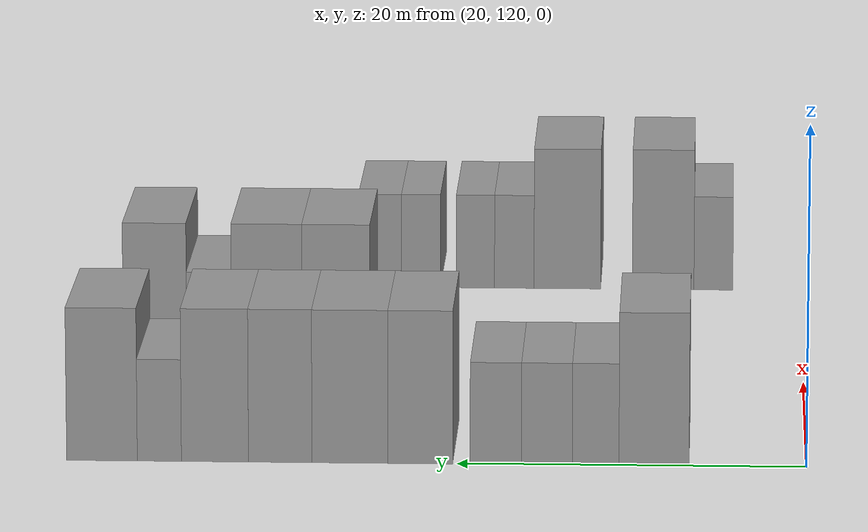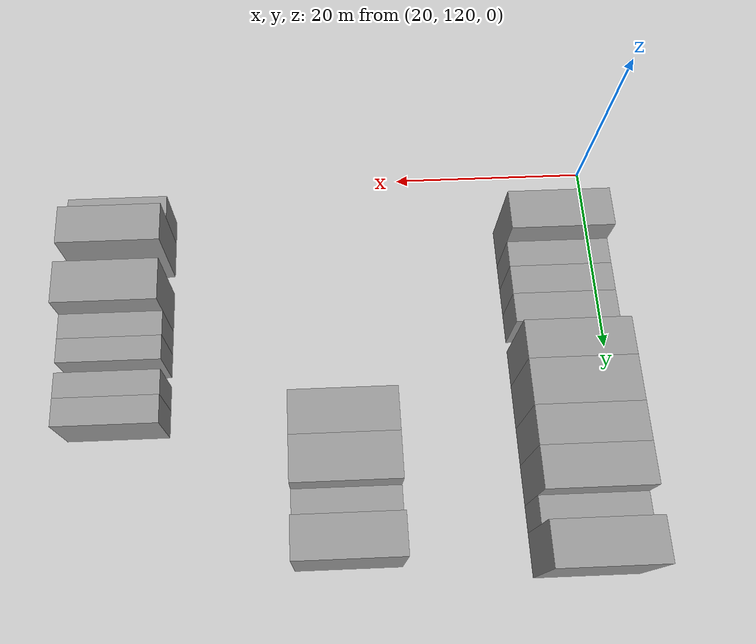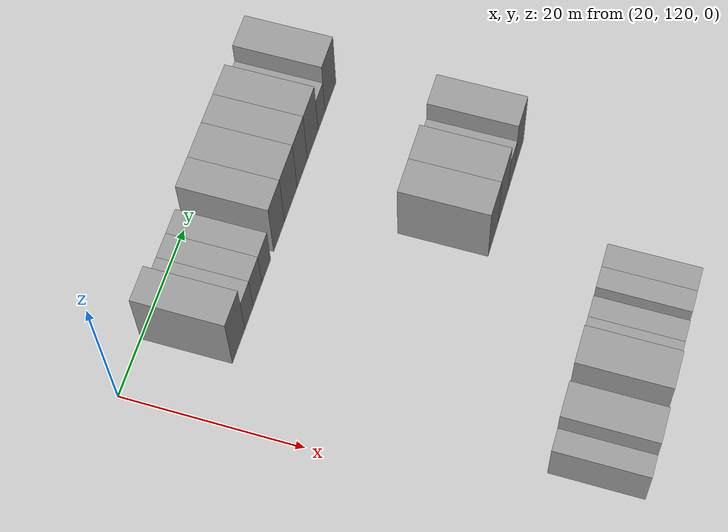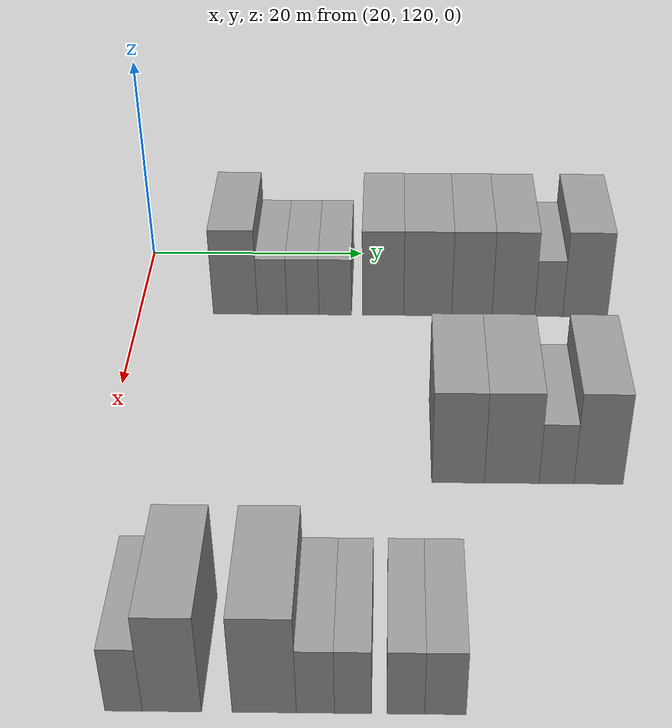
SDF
<sdf version="1.6">
 <world name="default">
  <model name="building_89">
   <static>1</static>
   <pose>25.0000 128.7384 0 0.000000 0.000000 0.000000</pose>
   <link name="link">
    <pose>0 0 4.50 0 0 0</pose>
    <collision name="collision"><geometry><box><size>10.0000 4.0123 9.0000</size></box></geometry></collision>
    <visual name="visual">
     <cast_shadows>0</cast_shadows>
     <geometry><box><size>10.0000 4.0123 9.0000</size></box></geometry>
     <material>
      <script>
       <uri>model://grey_wall/materials/scripts</uri>
       <uri>model://grey_wall/materials/textures</uri>
       <name>vrc/grey_wall</name>
      </script>
     </material>
    </visual>
   </link>
  </model>
  <model name="building_90">
   <static>1</static>
   <pose>25.0000 132.0802 0 0.000000 0.000000 0.000000</pose>
   <link name="link">
    <pose>0 0 3.00 0 0 0</pose>
    <collision name="collision"><geometry><box><size>10.0000 2.6713 6.0000</size></box></geometry></collision>
    <visual name="visual">
     <cast_shadows>0</cast_shadows>
     <geometry><box><size>10.0000 2.6713 6.0000</size></box></geometry>
     <material>
      <script>
       <uri>model://grey_wall/materials/scripts</uri>
       <uri>model://grey_wall/materials/textures</uri>
       <name>vrc/grey_wall</name>
      </script>
     </material>
    </visual>
   </link>
  </model>
  <model name="building_91">
   <static>1</static>
   <pose>25.0000 134.8691 0 0.000000 0.000000 0.000000</pose>
   <link name="link">
    <pose>0 0 3.00 0 0 0</pose>
    <collision name="collision"><geometry><box><size>10.0000 2.9065 6.0000</size></box></geometry></collision>
    <visual name="visual">
     <cast_shadows>0</cast_shadows>
     <geometry><box><size>10.0000 2.9065 6.0000</size></box></geometry>
     <material>
      <script>
       <uri>model://grey_wall/materials/scripts</uri>
       <uri>model://grey_wall/materials/textures</uri>
       <name>vrc/grey_wall</name>
      </script>
     </material>
    </visual>
   </link>
  </model>
  <model name="building_92">
   <static>1</static>
   <pose>25.0000 137.7899 0 0.000000 0.000000 0.000000</pose>
   <link name="link">
    <pose>0 0 3.00 0 0 0</pose>
    <collision name="collision"><geometry><box><size>10.0000 2.9352 6.0000</size></box></geometry></collision>
    <visual name="visual">
     <cast_shadows>0</cast_shadows>
     <geometry><box><size>10.0000 2.9352 6.0000</size></box></geometry>
     <material>
      <script>
       <uri>model://grey_wall/materials/scripts</uri>
       <uri>model://grey_wall/materials/textures</uri>
       <name>vrc/grey_wall</name>
      </script>
     </material>
    </visual>
   </link>
  </model>
  <model name="building_93">
   <static>1</static>
   <pose>25.0000 142.1137 0 0.000000 0.000000 0.000000</pose>
   <link name="link">
    <pose>0 0 4.50 0 0 0</pose>
    <collision name="collision"><geometry><box><size>10.0000 3.7125 9.0000</size></box></geometry></collision>
    <visual name="visual">
     <cast_shadows>0</cast_shadows>
     <geometry><box><size>10.0000 3.7125 9.0000</size></box></geometry>
     <material>
      <script>
       <uri>model://grey_wall/materials/scripts</uri>
       <uri>model://grey_wall/materials/textures</uri>
       <name>vrc/grey_wall</name>
      </script>
     </material>
    </visual>
   </link>
  </model>
  <model name="building_94">
   <static>1</static>
   <pose>25.0000 146.1461 0 0.000000 0.000000 0.000000</pose>
   <link name="link">
    <pose>0 0 4.50 0 0 0</pose>
    <collision name="collision"><geometry><box><size>10.0000 4.3523 9.0000</size></box></geometry></collision>
    <visual name="visual">
     <cast_shadows>0</cast_shadows>
     <geometry><box><size>10.0000 4.3523 9.0000</size></box></geometry>
     <material>
      <script>
       <uri>model://grey_wall/materials/scripts</uri>
       <uri>model://grey_wall/materials/textures</uri>
       <name>vrc/grey_wall</name>
      </script>
     </material>
    </visual>
   </link>
  </model>
  <model name="building_95">
   <static>1</static>
   <pose>25.0000 150.1456 0 0.000000 0.000000 0.000000</pose>
   <link name="link">
    <pose>0 0 4.50 0 0 0</pose>
    <collision name="collision"><geometry><box><size>10.0000 3.6467 9.0000</size></box></geometry></collision>
    <visual name="visual">
     <cast_shadows>0</cast_shadows>
     <geometry><box><size>10.0000 3.6467 9.0000</size></box></geometry>
     <material>
      <script>
       <uri>model://grey_wall/materials/scripts</uri>
       <uri>model://grey_wall/materials/textures</uri>
       <name>vrc/grey_wall</name>
      </script>
     </material>
    </visual>
   </link>
  </model>
  <model name="building_96">
   <static>1</static>
   <pose>25.0000 153.8942 0 0.000000 0.000000 0.000000</pose>
   <link name="link">
    <pose>0 0 4.50 0 0 0</pose>
    <collision name="collision"><geometry><box><size>10.0000 3.8504 9.0000</size></box></geometry></collision>
    <visual name="visual">
     <cast_shadows>0</cast_shadows>
     <geometry><box><size>10.0000 3.8504 9.0000</size></box></geometry>
     <material>
      <script>
       <uri>model://grey_wall/materials/scripts</uri>
       <uri>model://grey_wall/materials/textures</uri>
       <name>vrc/grey_wall</name>
      </script>
     </material>
    </visual>
   </link>
  </model>
  <model name="building_97">
   <static>1</static>
   <pose>25.0000 157.0864 0 0.000000 0.000000 0.000000</pose>
   <link name="link">
    <pose>0 0 3.00 0 0 0</pose>
    <collision name="collision"><geometry><box><size>10.0000 2.5340 6.0000</size></box></geometry></collision>
    <visual name="visual">
     <cast_shadows>0</cast_shadows>
     <geometry><box><size>10.0000 2.5340 6.0000</size></box></geometry>
     <material>
      <script>
       <uri>model://grey_wall/materials/scripts</uri>
       <uri>model://grey_wall/materials/textures</uri>
       <name>vrc/grey_wall</name>
      </script>
     </material>
    </visual>
   </link>
  </model>
  <model name="building_98">
   <static>1</static>
   <pose>25.0000 160.3821 0 0.000000 0.000000 0.000000</pose>
   <link name="link">
    <pose>0 0 4.50 0 0 0</pose>
    <collision name="collision"><geometry><box><size>10.0000 4.0575 9.0000</size></box></geometry></collision>
    <visual name="visual">
     <cast_shadows>0</cast_shadows>
     <geometry><box><size>10.0000 4.0575 9.0000</size></box></geometry>
     <material>
      <script>
       <uri>model://grey_wall/materials/scripts</uri>
       <uri>model://grey_wall/materials/textures</uri>
       <name>vrc/grey_wall</name>
      </script>
     </material>
    </visual>
   </link>
  </model>
  <model name="building_206">
   <static>1</static>
   <pose>47.0000 148.1056 0 0.000000 0.000000 0.000000</pose>
   <link name="link">
    <pose>0 0 4.50 0 0 0</pose>
    <collision name="collision"><geometry><box><size>10.0000 4.0907 9.0000</size></box></geometry></collision>
    <visual name="visual">
     <cast_shadows>0</cast_shadows>
     <geometry><box><size>10.0000 4.0907 9.0000</size></box></geometry>
     <material>
      <script>
       <uri>model://grey_wall/materials/scripts</uri>
       <uri>model://grey_wall/materials/textures</uri>
       <name>vrc/grey_wall</name>
      </script>
     </material>
    </visual>
   </link>
  </model>
  <model name="building_207">
   <static>1</static>
   <pose>47.0000 152.2756 0 0.000000 0.000000 0.000000</pose>
   <link name="link">
    <pose>0 0 4.50 0 0 0</pose>
    <collision name="collision"><geometry><box><size>10.0000 4.2493 9.0000</size></box></geometry></collision>
    <visual name="visual">
     <cast_shadows>0</cast_shadows>
     <geometry><box><size>10.0000 4.2493 9.0000</size></box></geometry>
     <material>
      <script>
       <uri>model://grey_wall/materials/scripts</uri>
       <uri>model://grey_wall/materials/textures</uri>
       <name>vrc/grey_wall</name>
      </script>
     </material>
    </visual>
   </link>
  </model>
  <model name="building_208">
   <static>1</static>
   <pose>47.0000 155.7540 0 0.000000 0.000000 0.000000</pose>
   <link name="link">
    <pose>0 0 3.00 0 0 0</pose>
    <collision name="collision"><geometry><box><size>10.0000 2.7075 6.0000</size></box></geometry></collision>
    <visual name="visual">
     <cast_shadows>0</cast_shadows>
     <geometry><box><size>10.0000 2.7075 6.0000</size></box></geometry>
     <material>
      <script>
       <uri>model://grey_wall/materials/scripts</uri>
       <uri>model://grey_wall/materials/textures</uri>
       <name>vrc/grey_wall</name>
      </script>
     </material>
    </visual>
   </link>
  </model>
  <model name="building_209">
   <static>1</static>
   <pose>47.0000 159.0225 0 0.000000 0.000000 0.000000</pose>
   <link name="link">
    <pose>0 0 4.50 0 0 0</pose>
    <collision name="collision"><geometry><box><size>10.0000 3.8296 9.0000</size></box></geometry></collision>
    <visual name="visual">
     <cast_shadows>0</cast_shadows>
     <geometry><box><size>10.0000 3.8296 9.0000</size></box></geometry>
     <material>
      <script>
       <uri>model://grey_wall/materials/scripts</uri>
       <uri>model://grey_wall/materials/textures</uri>
       <name>vrc/grey_wall</name>
      </script>
     </material>
    </visual>
   </link>
  </model>
  <model name="building_312">
   <static>1</static>
   <pose>69.0000 125.4518 0 0.000000 0.000000 0.000000</pose>
   <link name="link">
    <pose>0 0 3.00 0 0 0</pose>
    <collision name="collision"><geometry><box><size>10.0000 2.4531 6.0000</size></box></geometry></collision>
    <visual name="visual">
     <cast_shadows>0</cast_shadows>
     <geometry><box><size>10.0000 2.4531 6.0000</size></box></geometry>
     <material>
      <script>
       <uri>model://grey_wall/materials/scripts</uri>
       <uri>model://grey_wall/materials/textures</uri>
       <name>vrc/grey_wall</name>
      </script>
     </material>
    </visual>
   </link>
  </model>
  <model name="building_313">
   <static>1</static>
   <pose>69.0000 128.6182 0 0.000000 0.000000 0.000000</pose>
   <link name="link">
    <pose>0 0 4.50 0 0 0</pose>
    <collision name="collision"><geometry><box><size>10.0000 3.8796 9.0000</size></box></geometry></collision>
    <visual name="visual">
     <cast_shadows>0</cast_shadows>
     <geometry><box><size>10.0000 3.8796 9.0000</size></box></geometry>
     <material>
      <script>
       <uri>model://grey_wall/materials/scripts</uri>
       <uri>model://grey_wall/materials/textures</uri>
       <name>vrc/grey_wall</name>
      </script>
     </material>
    </visual>
   </link>
  </model>
  <model name="building_314">
   <static>1</static>
   <pose>69.0000 134.6590 0 0.000000 0.000000 0.000000</pose>
   <link name="link">
    <pose>0 0 4.50 0 0 0</pose>
    <collision name="collision"><geometry><box><size>10.0000 4.2021 9.0000</size></box></geometry></collision>
    <visual name="visual">
     <cast_shadows>0</cast_shadows>
     <geometry><box><size>10.0000 4.2021 9.0000</size></box></geometry>
     <material>
      <script>
       <uri>model://grey_wall/materials/scripts</uri>
       <uri>model://grey_wall/materials/textures</uri>
       <name>vrc/grey_wall</name>
      </script>
     </material>
    </visual>
   </link>
  </model>
  <model name="building_315">
   <static>1</static>
   <pose>69.0000 138.0072 0 0.000000 0.000000 0.000000</pose>
   <link name="link">
    <pose>0 0 3.00 0 0 0</pose>
    <collision name="collision"><geometry><box><size>10.0000 2.4942 6.0000</size></box></geometry></collision>
    <visual name="visual">
     <cast_shadows>0</cast_shadows>
     <geometry><box><size>10.0000 2.4942 6.0000</size></box></geometry>
     <material>
      <script>
       <uri>model://grey_wall/materials/scripts</uri>
       <uri>model://grey_wall/materials/textures</uri>
       <name>vrc/grey_wall</name>
      </script>
     </material>
    </visual>
   </link>
  </model>
  <model name="building_316">
   <static>1</static>
   <pose>69.0000 140.4598 0 0.000000 0.000000 0.000000</pose>
   <link name="link">
    <pose>0 0 3.00 0 0 0</pose>
    <collision name="collision"><geometry><box><size>10.0000 2.4110 6.0000</size></box></geometry></collision>
    <visual name="visual">
     <cast_shadows>0</cast_shadows>
     <geometry><box><size>10.0000 2.4110 6.0000</size></box></geometry>
     <material>
      <script>
       <uri>model://grey_wall/materials/scripts</uri>
       <uri>model://grey_wall/materials/textures</uri>
       <name>vrc/grey_wall</name>
      </script>
     </material>
    </visual>
   </link>
  </model>
  <model name="building_317">
   <static>1</static>
   <pose>69.0000 143.8967 0 0.000000 0.000000 0.000000</pose>
   <link name="link">
    <pose>0 0 3.00 0 0 0</pose>
    <collision name="collision"><geometry><box><size>10.0000 2.4630 6.0000</size></box></geometry></collision>
    <visual name="visual">
     <cast_shadows>0</cast_shadows>
     <geometry><box><size>10.0000 2.4630 6.0000</size></box></geometry>
     <material>
      <script>
       <uri>model://grey_wall/materials/scripts</uri>
       <uri>model://grey_wall/materials/textures</uri>
       <name>vrc/grey_wall</name>
      </script>
     </material>
    </visual>
   </link>
  </model>
  <model name="building_318">
   <static>1</static>
   <pose>69.0000 146.4851 0 0.000000 0.000000 0.000000</pose>
   <link name="link">
    <pose>0 0 3.00 0 0 0</pose>
    <collision name="collision"><geometry><box><size>10.0000 2.7137 6.0000</size></box></geometry></collision>
    <visual name="visual">
     <cast_shadows>0</cast_shadows>
     <geometry><box><size>10.0000 2.7137 6.0000</size></box></geometry>
     <material>
      <script>
       <uri>model://grey_wall/materials/scripts</uri>
       <uri>model://grey_wall/materials/textures</uri>
       <name>vrc/grey_wall</name>
      </script>
     </material>
    </visual>
   </link>
  </model>
 </world>
</sdf>
